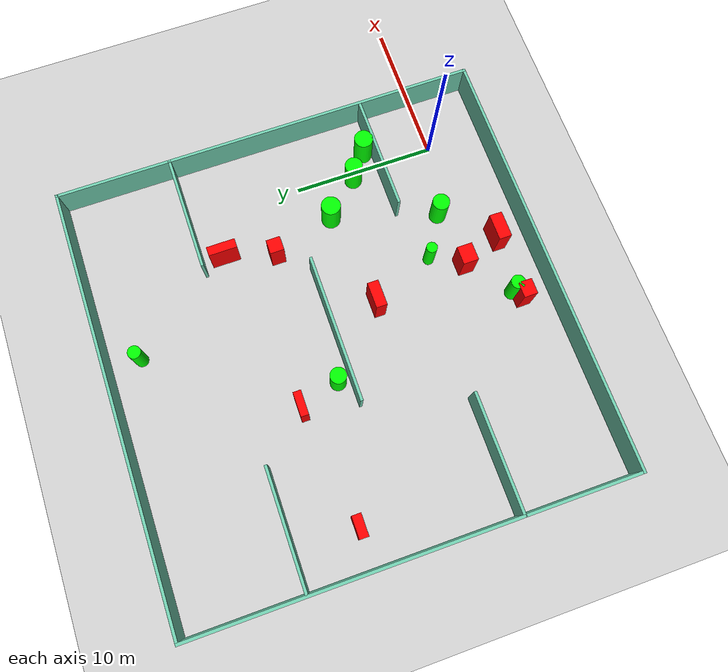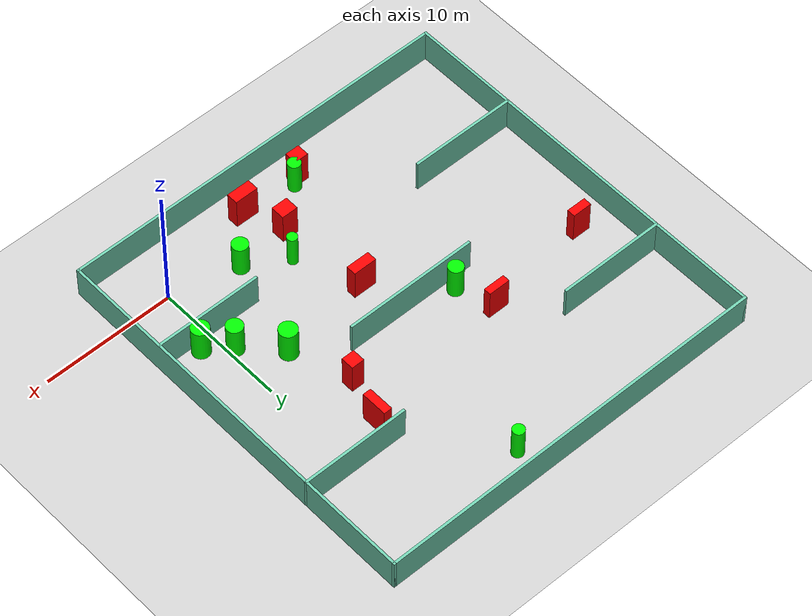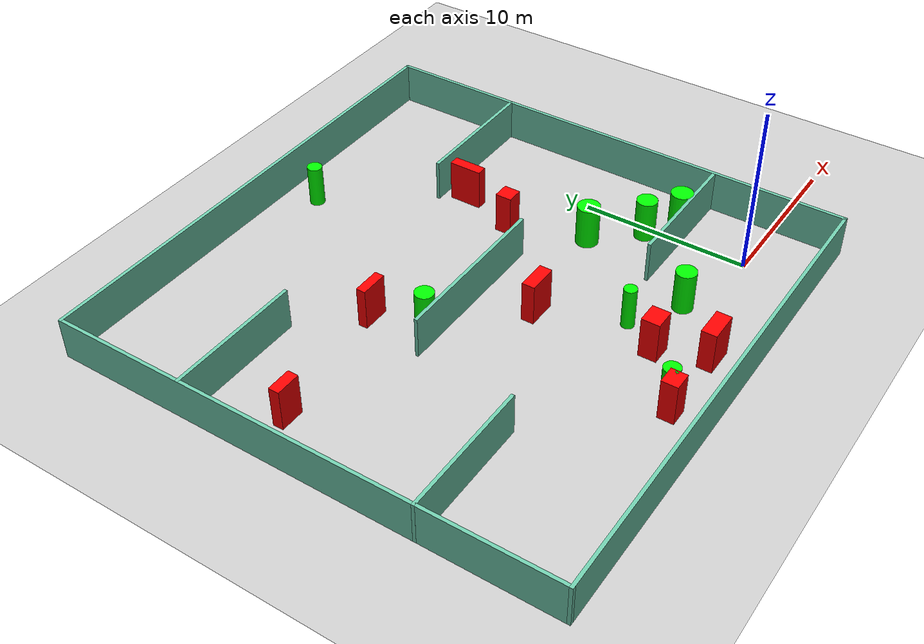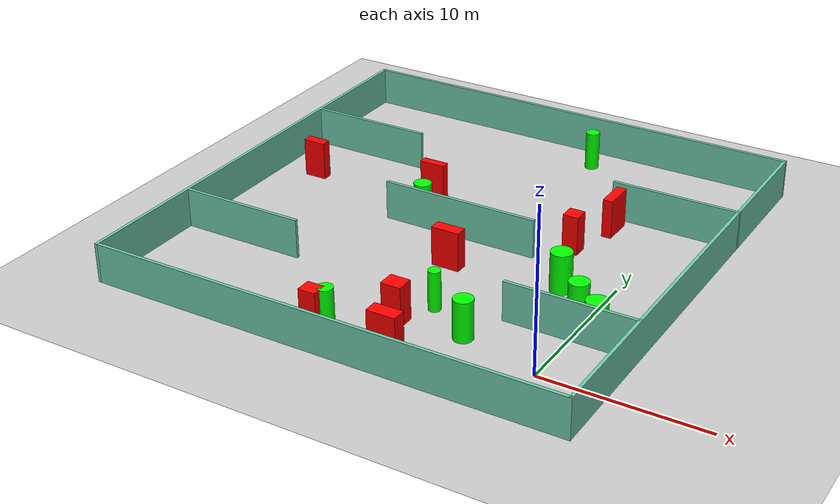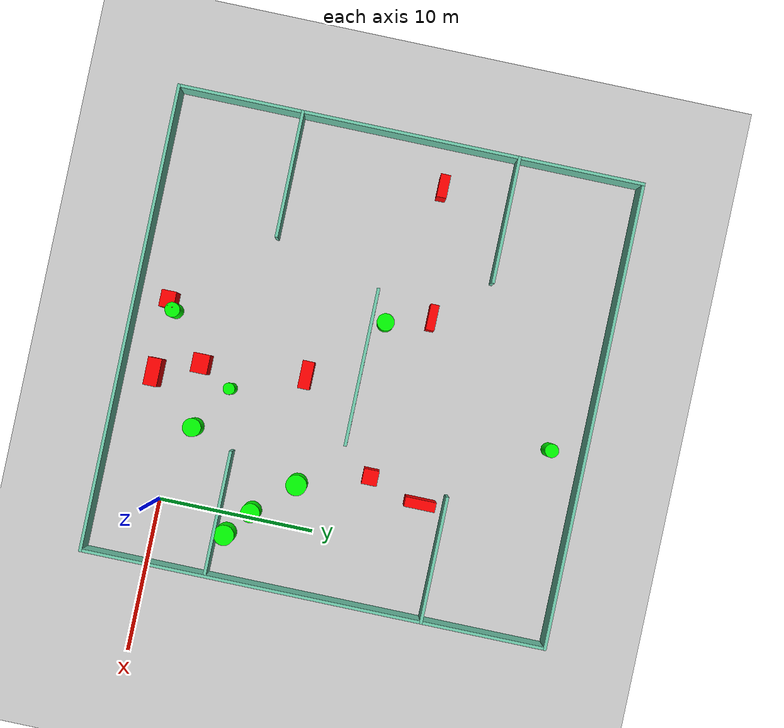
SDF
<sdf version="1.7">
 <world name="default">
  <light name="sun" type="directional">
   <pose>0 0 10 0 -0 0</pose>
   <diffuse>0.8 0.8 0.8 1</diffuse>
   <specular>0.2 0.2 0.2 1</specular>
   <attenuation>
    <range>1000</range>
    <constant>0.9</constant>
    <linear>0.01</linear>
    <quadratic>0.001</quadratic>
   </attenuation>
   <direction>-0.5 0.1 -0.9</direction>
   <spot><inner_angle>0</inner_angle><outer_angle>0</outer_angle><falloff>0</falloff></spot>
  </light>
  <model name="ground_plane">
   <static>1</static>
   <link name="link">
    <collision name="collision">
     <geometry><plane><normal>0 0 1</normal><size>100 100</size></plane></geometry>
     <surface>
      <contact><collide_bitmask>65535</collide_bitmask></contact>
      <friction><ode><mu>100</mu><mu2>50</mu2></ode></friction>
     </surface>
    </collision>
    <visual name="visual">
     <cast_shadows>0</cast_shadows>
     <geometry><plane><normal>0 0 1</normal><size>100 100</size></plane></geometry>
     <material>
      <script><uri>file://media/materials/scripts/gazebo.material</uri><name>Gazebo/Grey</name></script>
     </material>
    </visual>
   </link>
  </model>
  <gravity>0 0 -9.8</gravity>
  <magnetic_field>6e-06 2.3e-05 -4.2e-05</magnetic_field>
  <atmosphere type="adiabatic"/>
  <physics type="ode">
   <max_step_size>0.001</max_step_size>
   <real_time_factor>1</real_time_factor>
   <real_time_update_rate>1000</real_time_update_rate>
  </physics>
  <scene><ambient>0.4 0.4 0.4 1</ambient><background>0.7 0.7 0.7 1</background><shadows>1</shadows></scene>
  <spherical_coordinates>
   <surface_model>EARTH_WGS84</surface_model>
   <latitude_deg>0</latitude_deg>
   <longitude_deg>0</longitude_deg>
   <elevation>0</elevation>
   <heading_deg>0</heading_deg>
  </spherical_coordinates>
  <model name="my_base_walls">
   <link name="Wall_10">
    <collision name="Wall_10_Collision">
     <geometry><box><size>8.2 0.2 2.5</size></box></geometry>
     <pose>0 0 1.25 0 -0 0</pose>
    </collision>
    <visual name="Wall_10_Visual">
     <pose>0 0 1.25 0 -0 0</pose>
     <geometry><box><size>8.2 0.2 2.5</size></box></geometry>
     <material>
      <script><uri>file://media/materials/scripts/gazebo.material</uri><name>Gazebo/Grey</name></script>
      <ambient>0.435294 0.796078 0.67451 1</ambient>
     </material>
     <meta><layer>0</layer></meta>
    </visual>
    <pose>-11 -7 0 0 -0 0</pose>
   </link>
   <link name="Wall_12">
    <collision name="Wall_12_Collision">
     <geometry><box><size>8.2 0.2 2.5</size></box></geometry>
     <pose>0 0 1.25 0 -0 0</pose>
    </collision>
    <visual name="Wall_12_Visual">
     <pose>0 0 1.25 0 -0 0</pose>
     <geometry><box><size>8.2 0.2 2.5</size></box></geometry>
     <material>
      <script><uri>file://media/materials/scripts/gazebo.material</uri><name>Gazebo/Grey</name></script>
      <ambient>0.435294 0.796078 0.67451 1</ambient>
     </material>
     <meta><layer>0</layer></meta>
    </visual>
    <pose>-11 7 0 0 -0 0</pose>
   </link>
   <link name="Wall_14">
    <collision name="Wall_14_Collision">
     <geometry><box><size>8.2 0.2 2.5</size></box></geometry>
     <pose>0 0 1.25 0 -0 0</pose>
    </collision>
    <visual name="Wall_14_Visual">
     <pose>0 0 1.25 0 -0 0</pose>
     <geometry><box><size>8.2 0.2 2.5</size></box></geometry>
     <material>
      <script><uri>file://media/materials/scripts/gazebo.material</uri><name>Gazebo/Grey</name></script>
      <ambient>0.435294 0.796078 0.67451 1</ambient>
     </material>
     <meta><layer>0</layer></meta>
    </visual>
    <pose>11 7 0 0 -0 3.14159</pose>
   </link>
   <link name="Wall_16">
    <collision name="Wall_16_Collision">
     <geometry><box><size>10.2 0.2 2.5</size></box></geometry>
     <pose>0 0 1.25 0 -0 0</pose>
    </collision>
    <visual name="Wall_16_Visual">
     <pose>0 0 1.25 0 -0 0</pose>
     <geometry><box><size>10.2 0.2 2.5</size></box></geometry>
     <material>
      <script><uri>file://media/materials/scripts/gazebo.material</uri><name>Gazebo/Grey</name></script>
      <ambient>0.435294 0.796078 0.67451 1</ambient>
     </material>
     <meta><layer>0</layer></meta>
    </visual>
    <pose>0 0 0 0 -0 3.14159</pose>
   </link>
   <link name="Wall_2">
    <collision name="Wall_2_Collision">
     <geometry><box><size>30.2 0.2 2.5</size></box></geometry>
     <pose>0 0 1.25 0 -0 0</pose>
    </collision>
    <visual name="Wall_2_Visual">
     <pose>0 0 1.25 0 -0 0</pose>
     <geometry><box><size>30.2 0.2 2.5</size></box></geometry>
     <material>
      <script><uri>file://media/materials/scripts/gazebo.material</uri><name>Gazebo/Grey</name></script>
      <ambient>0.435294 0.796078 0.67451 1</ambient>
     </material>
     <meta><layer>0</layer></meta>
    </visual>
    <pose>0 -15 0 0 -0 3.14159</pose>
   </link>
   <link name="Wall_3">
    <collision name="Wall_3_Collision">
     <geometry><box><size>30.2 0.2 2.5</size></box></geometry>
     <pose>0 0 1.25 0 -0 0</pose>
    </collision>
    <visual name="Wall_3_Visual">
     <pose>0 0 1.25 0 -0 0</pose>
     <geometry><box><size>30.2 0.2 2.5</size></box></geometry>
     <material>
      <script><uri>file://media/materials/scripts/gazebo.material</uri><name>Gazebo/Grey</name></script>
      <ambient>0.435294 0.796078 0.67451 1</ambient>
     </material>
     <meta><layer>0</layer></meta>
    </visual>
    <pose>-15 0 0 0 -0 1.5708</pose>
   </link>
   <link name="Wall_4">
    <collision name="Wall_4_Collision">
     <geometry><box><size>30.2 0.2 2.5</size></box></geometry>
     <pose>0 0 1.25 0 -0 0</pose>
    </collision>
    <visual name="Wall_4_Visual">
     <pose>0 0 1.25 0 -0 0</pose>
     <geometry><box><size>30.2 0.2 2.5</size></box></geometry>
     <material>
      <script><uri>file://media/materials/scripts/gazebo.material</uri><name>Gazebo/Grey</name></script>
      <ambient>0.435294 0.796078 0.67451 1</ambient>
     </material>
     <meta><layer>0</layer></meta>
    </visual>
    <pose>0 15 0 0 -0 0</pose>
   </link>
   <link name="Wall_6">
    <collision name="Wall_6_Collision">
     <geometry><box><size>30.2 0.2 2.5</size></box></geometry>
     <pose>0 0 1.25 0 -0 0</pose>
    </collision>
    <visual name="Wall_6_Visual">
     <pose>0 0 1.25 0 -0 0</pose>
     <geometry><box><size>30.2 0.2 2.5</size></box></geometry>
     <material>
      <script><uri>file://media/materials/scripts/gazebo.material</uri><name>Gazebo/Grey</name></script>
      <ambient>0.435294 0.796078 0.67451 1</ambient>
     </material>
     <meta><layer>0</layer></meta>
    </visual>
    <pose>15 0 0 0 -0 1.5708</pose>
   </link>
   <link name="Wall_8">
    <collision name="Wall_8_Collision">
     <geometry><box><size>8.2 0.2 2.5</size></box></geometry>
     <pose>0 0 1.25 0 -0 0</pose>
    </collision>
    <visual name="Wall_8_Visual">
     <pose>0 0 1.25 0 -0 0</pose>
     <geometry><box><size>8.2 0.2 2.5</size></box></geometry>
     <material>
      <script><uri>file://media/materials/scripts/gazebo.material</uri><name>Gazebo/Grey</name></script>
      <ambient>0.435294 0.796078 0.67451 1</ambient>
     </material>
     <meta><layer>0</layer></meta>
    </visual>
    <pose>11 -7 0 0 -0 3.14159</pose>
   </link>
   <static>1</static>
   <pose>-11 11 0 0 -0 0</pose>
  </model>
  <model name="cylinder1">
   <static>1</static>
   <link name="link">
    <inertial>
     <mass>1</mass>
     <inertia><ixx>0.5</ixx><ixy>0</ixy><ixz>0</ixz><iyy>0.5</iyy><iyz>0</iyz><izz>1</izz></inertia>
    </inertial>
    <collision name="collision">
     <geometry><cylinder><radius>0.38027349439931957</radius><length>2.5</length></cylinder></geometry>
    </collision>
    <visual name="visual">
     <geometry><cylinder><radius>0.38027349439931957</radius><length>2.5</length></cylinder></geometry>
     <material>
      <ambient>0 1 0 1</ambient>
      <diffuse>0 1 0 1</diffuse>
      <specular>0.1 0.1 0.1 1</specular>
      <emissive>0 0 0 0</emissive>
     </material>
    </visual>
   </link>
   <pose>-7.917363820059231 3.0695546620008454 1.25 0 0 0</pose>
  </model>
  <model name="cylinder2">
   <static>1</static>
   <link name="link">
    <inertial>
     <mass>1</mass>
     <inertia><ixx>0.5</ixx><ixy>0</ixy><ixz>0</ixz><iyy>0.5</iyy><iyz>0</iyz><izz>1</izz></inertia>
    </inertial>
    <collision name="collision">
     <geometry><cylinder><radius>0.5941880615563635</radius><length>2.5</length></cylinder></geometry>
    </collision>
    <visual name="visual">
     <geometry><cylinder><radius>0.5941880615563635</radius><length>2.5</length></cylinder></geometry>
     <material>
      <ambient>0 1 0 1</ambient>
      <diffuse>0 1 0 1</diffuse>
      <specular>0.1 0.1 0.1 1</specular>
      <emissive>0 0 0 0</emissive>
     </material>
    </visual>
   </link>
   <pose>-5.03385977030584 1.2729897088688489 1.25 0 0 0</pose>
  </model>
  <model name="cylinder3">
   <static>1</static>
   <link name="link">
    <inertial>
     <mass>1</mass>
     <inertia><ixx>0.5</ixx><ixy>0</ixy><ixz>0</ixz><iyy>0.5</iyy><iyz>0</iyz><izz>1</izz></inertia>
    </inertial>
    <collision name="collision">
     <geometry><cylinder><radius>0.6154955449382712</radius><length>2.5</length></cylinder></geometry>
    </collision>
    <visual name="visual">
     <geometry><cylinder><radius>0.6154955449382712</radius><length>2.5</length></cylinder></geometry>
     <material>
      <ambient>0 1 0 1</ambient>
      <diffuse>0 1 0 1</diffuse>
      <specular>0.1 0.1 0.1 1</specular>
      <emissive>0 0 0 0</emissive>
     </material>
    </visual>
   </link>
   <pose>-0.5101183329759422 6.00775611203429 1.25 0 0 0</pose>
  </model>
  <model name="cylinder4">
   <static>1</static>
   <link name="link">
    <inertial>
     <mass>1</mass>
     <inertia><ixx>0.5</ixx><ixy>0</ixy><ixz>0</ixz><iyy>0.5</iyy><iyz>0</iyz><izz>1</izz></inertia>
    </inertial>
    <collision name="collision">
     <geometry><cylinder><radius>0.48207339785755554</radius><length>2.5</length></cylinder></geometry>
    </collision>
    <visual name="visual">
     <geometry><cylinder><radius>0.48207339785755554</radius><length>2.5</length></cylinder></geometry>
     <material>
      <ambient>0 1 0 1</ambient>
      <diffuse>0 1 0 1</diffuse>
      <specular>0.1 0.1 0.1 1</specular>
      <emissive>0 0 0 0</emissive>
     </material>
    </visual>
   </link>
   <pose>-12.058233138559084 -1.4632025677783669 1.25 0 0 0</pose>
  </model>
  <model name="cylinder5">
   <static>1</static>
   <link name="link">
    <inertial>
     <mass>1</mass>
     <inertia><ixx>0.5</ixx><ixy>0</ixy><ixz>0</ixz><iyy>0.5</iyy><iyz>0</iyz><izz>1</izz></inertia>
    </inertial>
    <collision name="collision">
     <geometry><cylinder><radius>0.44520057981294214</radius><length>2.5</length></cylinder></geometry>
    </collision>
    <visual name="visual">
     <geometry><cylinder><radius>0.44520057981294214</radius><length>2.5</length></cylinder></geometry>
     <material>
      <ambient>0 1 0 1</ambient>
      <diffuse>0 1 0 1</diffuse>
      <specular>0.1 0.1 0.1 1</specular>
      <emissive>0 0 0 0</emissive>
     </material>
    </visual>
   </link>
   <pose>-8.325312805899365 23.830985822576253 1.25 0 0 0</pose>
  </model>
  <model name="cylinder6">
   <static>1</static>
   <link name="link">
    <inertial>
     <mass>1</mass>
     <inertia><ixx>0.5</ixx><ixy>0</ixy><ixz>0</ixz><iyy>0.5</iyy><iyz>0</iyz><izz>1</izz></inertia>
    </inertial>
    <collision name="collision">
     <geometry><cylinder><radius>0.5587360120266823</radius><length>2.5</length></cylinder></geometry>
    </collision>
    <visual name="visual">
     <geometry><cylinder><radius>0.5587360120266823</radius><length>2.5</length></cylinder></geometry>
     <material>
      <ambient>0 1 0 1</ambient>
      <diffuse>0 1 0 1</diffuse>
      <specular>0.1 0.1 0.1 1</specular>
      <emissive>0 0 0 0</emissive>
     </material>
    </visual>
   </link>
   <pose>-14.086293773634779 11.882121619910022 1.25 0 0 0</pose>
  </model>
  <model name="cylinder7">
   <static>1</static>
   <link name="link">
    <inertial>
     <mass>1</mass>
     <inertia><ixx>0.5</ixx><ixy>0</ixy><ixz>0</ixz><iyy>0.5</iyy><iyz>0</iyz><izz>1</izz></inertia>
    </inertial>
    <collision name="collision">
     <geometry><cylinder><radius>0.6712730563523035</radius><length>2.5</length></cylinder></geometry>
    </collision>
    <visual name="visual">
     <geometry><cylinder><radius>0.6712730563523035</radius><length>2.5</length></cylinder></geometry>
     <material>
      <ambient>0 1 0 1</ambient>
      <diffuse>0 1 0 1</diffuse>
      <specular>0.1 0.1 0.1 1</specular>
      <emissive>0 0 0 0</emissive>
     </material>
    </visual>
   </link>
   <pose>-2.8300867299132157 8.491756316746596 1.25 0 0 0</pose>
  </model>
  <model name="cylinder8">
   <static>1</static>
   <link name="link">
    <inertial>
     <mass>1</mass>
     <inertia><ixx>0.5</ixx><ixy>0</ixy><ixz>0</ixz><iyy>0.5</iyy><iyz>0</iyz><izz>1</izz></inertia>
    </inertial>
    <collision name="collision">
     <geometry><cylinder><radius>0.6567078403488031</radius><length>2.5</length></cylinder></geometry>
    </collision>
    <visual name="visual">
     <geometry><cylinder><radius>0.6567078403488031</radius><length>2.5</length></cylinder></geometry>
     <material>
      <ambient>0 1 0 1</ambient>
      <diffuse>0 1 0 1</diffuse>
      <specular>0.1 0.1 0.1 1</specular>
      <emissive>0 0 0 0</emissive>
     </material>
    </visual>
   </link>
   <pose>1.2057666808719567 4.6717614708721245 1.25 0 0 0</pose>
  </model>
  <model name="box1">
   <static>1</static>
   <link name="link">
    <inertial>
     <mass>1</mass>
     <inertia><ixx>0.083</ixx><ixy>0</ixy><ixz>0</ixz><iyy>0.083</iyy><iyz>0</iyz><izz>0.083</izz></inertia>
    </inertial>
    <collision name="collision">
     <geometry><box><size>0.9891356236314325 0.9808520894170979 2.5</size></box></geometry>
    </collision>
    <visual name="visual">
     <geometry><box><size>0.9891356236314325 0.9808520894170979 2.5</size></box></geometry>
     <material>
      <ambient>1 0 0 1</ambient>
      <diffuse>1 0 0 1</diffuse>
      <specular>0.1 0.1 0.1 1</specular>
      <emissive>0 0 0 0</emissive>
     </material>
    </visual>
    <sensor name="my_contact" type="contact">
     <contact><collision>box_collision</collision><topic>__default_topic__</topic></contact>
    </sensor>
   </link>
   <pose>-4.299328196538319 12.972937345883226 1.25 0 0 0</pose>
  </model>
  <model name="box2">
   <static>1</static>
   <link name="link">
    <inertial>
     <mass>1</mass>
     <inertia><ixx>0.083</ixx><ixy>0</ixy><ixz>0</ixz><iyy>0.083</iyy><iyz>0</iyz><izz>0.083</izz></inertia>
    </inertial>
    <collision name="collision">
     <geometry><box><size>1.0861538369312822 0.9520270228547633 2.5</size></box></geometry>
    </collision>
    <visual name="visual">
     <geometry><box><size>1.0861538369312822 0.9520270228547633 2.5</size></box></geometry>
     <material>
      <ambient>1 0 0 1</ambient>
      <diffuse>1 0 0 1</diffuse>
      <specular>0.1 0.1 0.1 1</specular>
      <emissive>0 0 0 0</emissive>
     </material>
    </visual>
    <sensor name="my_contact" type="contact">
     <contact><collision>box_collision</collision><topic>__default_topic__</topic></contact>
    </sensor>
   </link>
   <pose>-12.658192854953455 -1.8938639861641255 1.25 0 0 0</pose>
  </model>
  <model name="box3">
   <static>1</static>
   <link name="link">
    <inertial>
     <mass>1</mass>
     <inertia><ixx>0.083</ixx><ixy>0</ixy><ixz>0</ixz><iyy>0.083</iyy><iyz>0</iyz><izz>0.083</izz></inertia>
    </inertial>
    <collision name="collision">
     <geometry><box><size>1.8039549350738284 0.8833877164629129 2.5</size></box></geometry>
    </collision>
    <visual name="visual">
     <geometry><box><size>1.8039549350738284 0.8833877164629129 2.5</size></box></geometry>
     <material>
      <ambient>1 0 0 1</ambient>
      <diffuse>1 0 0 1</diffuse>
      <specular>0.1 0.1 0.1 1</specular>
      <emissive>0 0 0 0</emissive>
     </material>
    </visual>
    <sensor name="my_contact" type="contact">
     <contact><collision>box_collision</collision><topic>__default_topic__</topic></contact>
    </sensor>
   </link>
   <pose>-7.965394688613589 -1.8824465192322162 1.25 0 0 0</pose>
  </model>
  <model name="box4">
   <static>1</static>
   <link name="link">
    <inertial>
     <mass>1</mass>
     <inertia><ixx>0.083</ixx><ixy>0</ixy><ixz>0</ixz><iyy>0.083</iyy><iyz>0</iyz><izz>0.083</izz></inertia>
    </inertial>
    <collision name="collision">
     <geometry><box><size>1.7948501791594054 0.7632706753558607 2.5</size></box></geometry>
    </collision>
    <visual name="visual">
     <geometry><box><size>1.7948501791594054 0.7632706753558607 2.5</size></box></geometry>
     <material>
      <ambient>1 0 0 1</ambient>
      <diffuse>1 0 0 1</diffuse>
      <specular>0.1 0.1 0.1 1</specular>
      <emissive>0 0 0 0</emissive>
     </material>
    </visual>
    <sensor name="my_contact" type="contact">
     <contact><collision>box_collision</collision><topic>__default_topic__</topic></contact>
    </sensor>
   </link>
   <pose>-9.773019658810881 7.655521179376624 1.25 0 0 0</pose>
  </model>
  <model name="box5">
   <static>1</static>
   <link name="link">
    <inertial>
     <mass>1</mass>
     <inertia><ixx>0.083</ixx><ixy>0</ixy><ixz>0</ixz><iyy>0.083</iyy><iyz>0</iyz><izz>0.083</izz></inertia>
    </inertial>
    <collision name="collision">
     <geometry><box><size>1.2545603408391044 1.0718851279984936 2.5</size></box></geometry>
    </collision>
    <visual name="visual">
     <geometry><box><size>1.2545603408391044 1.0718851279984936 2.5</size></box></geometry>
     <material>
      <ambient>1 0 0 1</ambient>
      <diffuse>1 0 0 1</diffuse>
      <specular>0.1 0.1 0.1 1</specular>
      <emissive>0 0 0 0</emissive>
     </material>
    </visual>
    <sensor name="my_contact" type="contact">
     <contact><collision>box_collision</collision><topic>__default_topic__</topic></contact>
    </sensor>
   </link>
   <pose>-9.104061510248986 0.962462394770073 1.25 0 0 0</pose>
  </model>
  <model name="box6">
   <static>1</static>
   <link name="link">
    <inertial>
     <mass>1</mass>
     <inertia><ixx>0.083</ixx><ixy>0</ixy><ixz>0</ixz><iyy>0.083</iyy><iyz>0</iyz><izz>0.083</izz></inertia>
    </inertial>
    <collision name="collision">
     <geometry><box><size>0.6339417586908291 1.9841954818070369 2.5</size></box></geometry>
    </collision>
    <visual name="visual">
     <geometry><box><size>0.6339417586908291 1.9841954818070369 2.5</size></box></geometry>
     <material>
      <ambient>1 0 0 1</ambient>
      <diffuse>1 0 0 1</diffuse>
      <specular>0.1 0.1 0.1 1</specular>
      <emissive>0 0 0 0</emissive>
     </material>
    </visual>
    <sensor name="my_contact" type="contact">
     <contact><collision>box_collision</collision><topic>__default_topic__</topic></contact>
    </sensor>
   </link>
   <pose>-3.2720847401061697 16.405862767683967 1.25 0 0 0</pose>
  </model>
  <model name="box7">
   <static>1</static>
   <link name="link">
    <inertial>
     <mass>1</mass>
     <inertia><ixx>0.083</ixx><ixy>0</ixy><ixz>0</ixz><iyy>0.083</iyy><iyz>0</iyz><izz>0.083</izz></inertia>
    </inertial>
    <collision name="collision">
     <geometry><box><size>1.6621882618240431 0.5499604236917951 2.5</size></box></geometry>
    </collision>
    <visual name="visual">
     <geometry><box><size>1.6621882618240431 0.5499604236917951 2.5</size></box></geometry>
     <material>
      <ambient>1 0 0 1</ambient>
      <diffuse>1 0 0 1</diffuse>
      <specular>0.1 0.1 0.1 1</specular>
      <emissive>0 0 0 0</emissive>
     </material>
    </visual>
    <sensor name="my_contact" type="contact">
     <contact><collision>box_collision</collision><topic>__default_topic__</topic></contact>
    </sensor>
   </link>
   <pose>-14.992655063283483 14.71662381158298 1.25 0 0 0</pose>
  </model>
  <model name="box8">
   <static>1</static>
   <link name="link">
    <inertial>
     <mass>1</mass>
     <inertia><ixx>0.083</ixx><ixy>0</ixy><ixz>0</ixz><iyy>0.083</iyy><iyz>0</iyz><izz>0.083</izz></inertia>
    </inertial>
    <collision name="collision">
     <geometry><box><size>1.4789378319367599 0.6301124046955033 2.5</size></box></geometry>
    </collision>
    <visual name="visual">
     <geometry><box><size>1.4789378319367599 0.6301124046955033 2.5</size></box></geometry>
     <material>
      <ambient>1 0 0 1</ambient>
      <diffuse>1 0 0 1</diffuse>
      <specular>0.1 0.1 0.1 1</specular>
      <emissive>0 0 0 0</emissive>
     </material>
    </visual>
    <sensor name="my_contact" type="contact">
     <contact><collision>box_collision</collision><topic>__default_topic__</topic></contact>
    </sensor>
   </link>
   <pose>-23.26444738311076 13.679400144287644 1.25 0 0 0</pose>
  </model>
 </world>
</sdf>
